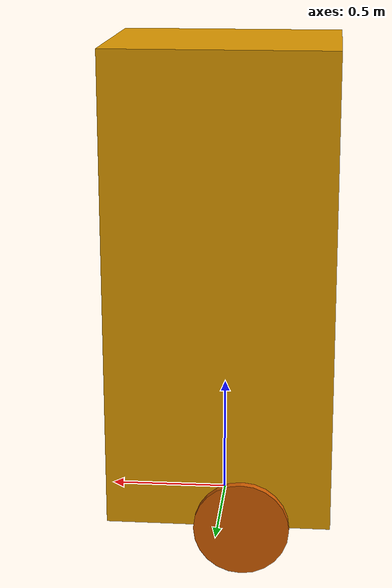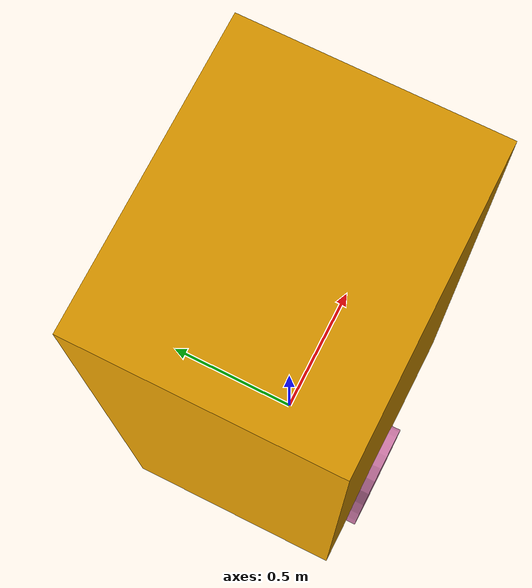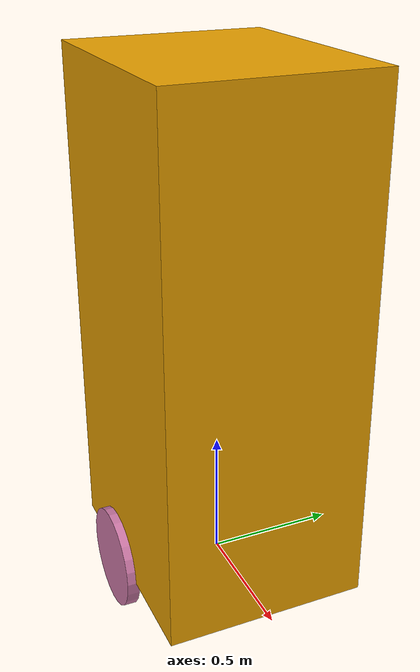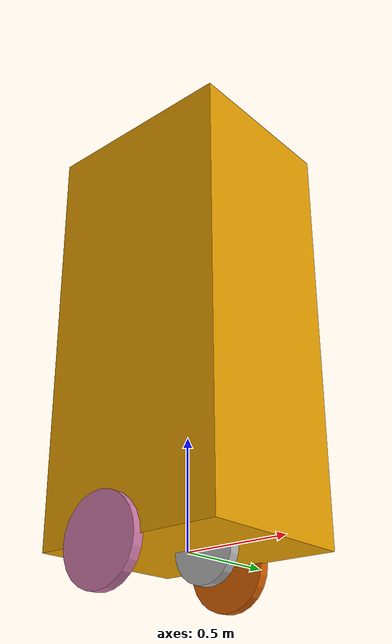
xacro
<?xml version="1.0"?>
<robot xmlns:xacro="http://www.ros.org/wiki/xacro" name="lab_robot">
  <link name="base">
    <visual>
      <origin xyz="0 0 0.99" rpy="0 0 0" />
      <geometry>
        <box size="0.94 0.78 1.98" />
      </geometry>
    </visual>
    <collision>
      <origin xyz="0 0 0.99" rpy="0 0 0" />
      <geometry>
        <box size="0.94 0.78 1.98" />
      </geometry>
    </collision>
  </link>

  <link name="laser_vert_bottom">
    <visual>
      <geometry>
        <box size="0.062 0.062 0.087" />
      </geometry>
    </visual>
    <collision>
      <geometry>
        <box size="0.062 0.062 0.087" />
      </geometry>
    </collision>
  </link>

  <link name="laser_vert_top_right">
    <visual>
      <geometry>
        <box size="0.062 0.062 0.087" />
      </geometry>
    </visual>
    <collision>
      <geometry>
        <box size="0.062 0.062 0.087" />
      </geometry>
    </collision>
  </link>

  <link name="laser_vert_top_left">
    <visual>
      <geometry>
        <box size="0.062 0.062 0.087" />
      </geometry>
    </visual>
    <collision>
      <geometry>
        <box size="0.062 0.062 0.087" />
      </geometry>
    </collision>
  </link>

  <link name="laser_horiz">
    <visual>
      <geometry>
        <cylinder radius="0.052" length="0.072" />
      </geometry>
    </visual>
    <collision>
      <geometry>
        <cylinder radius="0.052" length="0.072" />
      </geometry>
    </collision>
  </link>

  <joint name="base_laser_vert_bottom_joint" type="fixed">
    <parent link="base" />
    <child link="laser_vert_bottom" />
    <origin xyz="0.3158 -0.0021 0.5100" rpy ="3.1355 -1.3045 0.0025" />
  </joint>

  <joint name="base_laser_vert_top_right_joint" type="fixed">
    <parent link="base" />
    <child link="laser_vert_top_right" />
    <origin xyz="0.2978 -0.1450 1.8451" rpy ="-1.1760 0.6313 -1.9377" />
  </joint>

  <joint name="base_laser_vert_top_left_joint" type="fixed">
    <parent link="base" />
    <child link="laser_vert_top_left" />
    <origin xyz="0.2997 0.1531 1.8443" rpy ="1.1780 0.6198 1.9560" />
  </joint>

  <joint name="base_laser_horiz_joint" type="fixed">
    <parent link="base" />
    <child link="laser_horiz" />
    <origin xyz="0.2325 0.0001 1.9201" rpy ="-0.0012 0.1146 -0.0015" />
  </joint>

  <xacro:macro name="xacro_name" params="suffix reflect">
    <link name="wheel_${suffix}">
      <visual>
        <geometry>
          <cylinder radius="0.2" length="0.05" />
        </geometry>
      </visual>
      <collision>
        <geometry>
          <cylinder radius="0.2" length="0.05" />
        </geometry>
      </collision>
    </link>

    <joint name="base_wheel_${suffix}_joint" type="continuous">
      <parent link="base" />
      <child link="wheel_${suffix}" />
      <origin xyz="-0.1 ${reflect * 0.4} 0" rpy ="-1.5708 0 0" />
      <limit effort="30" velocity="1" />
      <axis xyz="0 0 1" />
    </joint>
  </xacro:macro>
  <xacro:xacro_name suffix="left" reflect="1" />
  <xacro:xacro_name suffix="right" reflect="-1" />

  <link name="wheel_center">
    <visual>
      <geometry>
        <cylinder radius="0.15" length="0.05" />
      </geometry>
    </visual>
    <collision>
      <geometry>
        <cylinder radius="0.15" length="0.05" />
      </geometry>
    </collision>
  </link>

  <joint name="base_wheel_center_joint" type="continuous">
    <parent link="base" />
    <child link="wheel_center" />
    <origin xyz="0.1 0 0" rpy ="-1.5708 0 0" />
    <limit effort="30" velocity="1" />
    <axis xyz="0 0 1" />
  </joint>
</robot>
